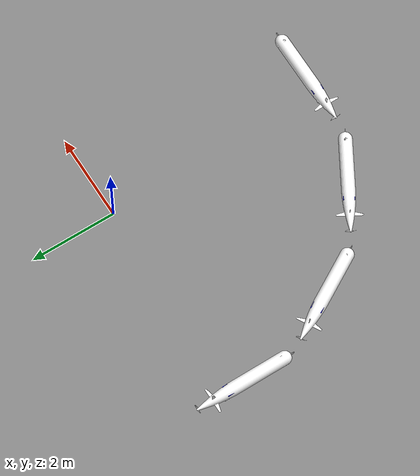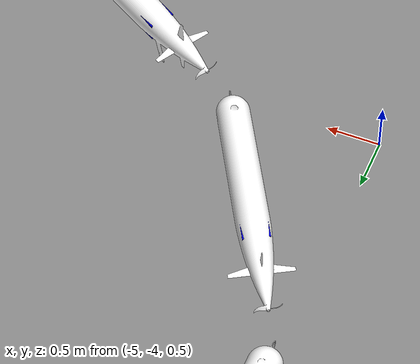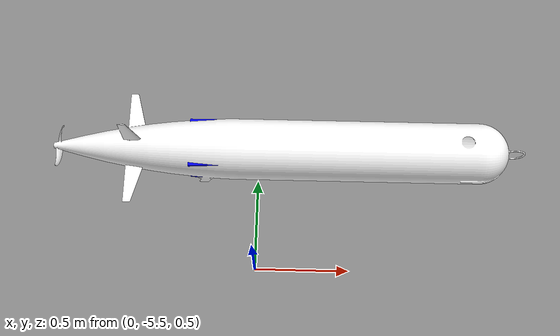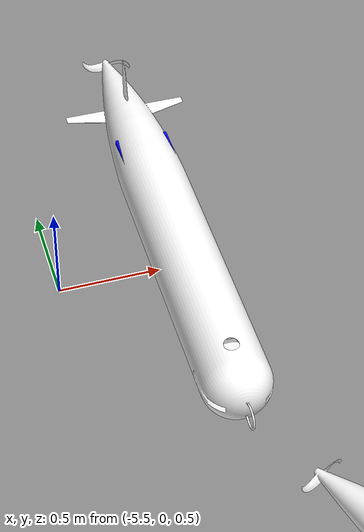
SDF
<?xml version="1.0" ?>
<!--
  Development of this module has been funded by the Monterey Bay Aquarium
  Research Institute (MBARI) and the David and Lucile Packard Foundation
-->
<sdf version="1.9">
  <world name="star_world">
    <scene>
      <!-- For turquoise ambient to match particle effect -->
      <ambient>0.0 1.0 1.0</ambient>
      <!-- For default gray ambient -->
      <background>0.0 0.7 0.8</background>
    </scene>

    <physics name="1ms" type="ode">
      <max_step_size>0.001</max_step_size>
      <real_time_factor>0</real_time_factor>
    </physics>
    <plugin
      filename="gz-sim-physics-system"
      name="gz::sim::systems::Physics">
    </plugin>
    <plugin
      filename="gz-sim-user-commands-system"
      name="gz::sim::systems::UserCommands">
    </plugin>
    <plugin
      filename="gz-sim-scene-broadcaster-system"
      name="gz::sim::systems::SceneBroadcaster">
    </plugin>

    <plugin
      filename="gz-sim-imu-system"
      name="gz::sim::systems::Imu">
    </plugin>
    <plugin
      filename="gz-sim-magnetometer-system"
      name="gz::sim::systems::Magnetometer">
    </plugin>
    <plugin
      filename="gz-sim-buoyancy-system"
      name="gz::sim::systems::Buoyancy">
      <uniform_fluid_density>1025</uniform_fluid_density>
    </plugin>
    <plugin
      filename="gz-sim-acoustic-comms-system"
      name="gz::sim::systems::AcousticComms">
      <max_range>2500</max_range>
      <speed_of_sound>1500</speed_of_sound>
    </plugin>

    <!-- Requires ParticleEmitter2 in gz-sim 4.8.0, which will be copied
      to ParticleEmitter in Ignition G.
      See https://github.com/gazebosim/gz-sim/pull/730 -->
    <plugin
      filename="gz-sim-particle-emitter2-system"
      name="gz::sim::systems::ParticleEmitter2">
    </plugin>

    <!-- Uncomment for time analysis -->

    <light type="directional" name="sun">
      <cast_shadows>true</cast_shadows>
      <pose>0 0 10 0 0 0</pose>
      <diffuse>1 1 1 1</diffuse>
      <specular>0.5 0.5 0.5 1</specular>
      <attenuation>
        <range>1000</range>
        <constant>0.9</constant>
        <linear>0.01</linear>
        <quadratic>0.001</quadratic>
      </attenuation>
      <direction>-0.5 0.1 -0.9</direction>
    </light>

    <include>
      <pose>-5 0 1 0 0 0</pose>
      <uri>tethys_equipped</uri>
      <name>tethys1</name>
      <experimental:params>
        <sensor element_id="base_link::salinity_sensor" action="modify">
          <topic>/model/tethys1/salinity</topic>
        </sensor>
        <sensor element_id="base_link::temperature_sensor" action="modify">
          <topic>/model/tethys1/temperature</topic>
        </sensor>
        <sensor element_id="base_link::chlorophyll_sensor" action="modify">
          <topic>/model/tethys1/chlorophyll</topic>
        </sensor>
        <plugin element_id="gz::sim::systems::Thruster" action="modify">
          <namespace>tethys1</namespace>
        </plugin>
        <plugin element_id="tethys::TethysCommPlugin" action="modify">
          <namespace>tethys1</namespace>
          <command_topic>tethys1/command_topic</command_topic>
          <state_topic>tethys1/state_topic</state_topic>
        </plugin>
        <plugin element_id="gz::sim::systems::BuoyancyEngine" action="modify">
          <namespace>tethys1</namespace>
        </plugin>
        <plugin element_id="gz::sim::systems::DetachableJoint" action="modify">
          <topic>/model/tethys1/drop_weight</topic>
        </plugin>
        <plugin element_id="gz::sim::systems::CommsEndpoint" action="modify">
          <address>1</address>
          <topic>1/rx</topic>
        </plugin>
        <plugin element_id="tethys::RangeBearingPlugin" action="modify">
          <address>1</address>
          <namespace>tethys1</namespace>
        </plugin>
      </experimental:params>
    </include>

    <include>
      <pose>-4.3301 -2.5 1 0 0 0.524</pose>
      <uri>tethys_equipped</uri>
      <name>tethys2</name>
      <experimental:params>
        <sensor element_id="base_link::salinity_sensor" action="modify">
          <topic>/model/tethys2/salinity</topic>
        </sensor>
        <sensor element_id="base_link::temperature_sensor" action="modify">
          <topic>/model/tethys2/temperature</topic>
        </sensor>
        <sensor element_id="base_link::chlorophyll_sensor" action="modify">
          <topic>/model/tethys2/chlorophyll</topic>
        </sensor>
        <sensor element_id="base_link::current_sensor" action="modify">
          <topic>/model/tethys2/current</topic>
        </sensor>
        <plugin element_id="gz::sim::systems::Thruster" action="modify">
          <namespace>tethys2</namespace>
        </plugin>
        <plugin element_id="tethys::TethysCommPlugin" action="modify">
          <namespace>tethys2</namespace>
          <command_topic>tethys2/command_topic</command_topic>
          <state_topic>tethys2/state_topic</state_topic>
        </plugin>
        <plugin element_id="gz::sim::systems::BuoyancyEngine" action="modify">
          <namespace>tethys2</namespace>
        </plugin>
        <plugin element_id="gz::sim::systems::DetachableJoint" action="modify">
          <topic>/model/tethys2/drop_weight</topic>
        </plugin>
        <plugin element_id="gz::sim::systems::CommsEndpoint" action="modify">
          <address>2</address>
          <topic>2/rx</topic>
        </plugin>
        <plugin element_id="tethys::RangeBearingPlugin" action="modify">
          <address>2</address>
          <namespace>tethys2</namespace>
        </plugin>
      </experimental:params>
    </include>

    <include>
      <pose>-2.5 -4.3301 1 0 0 1.0472</pose>
      <uri>tethys_equipped</uri>
      <name>tethys3</name>
      <experimental:params>
        <sensor element_id="base_link::salinity_sensor" action="modify">
          <topic>/model/tethys3/salinity</topic>
        </sensor>
        <sensor element_id="base_link::temperature_sensor" action="modify">
          <topic>/model/tethys3/temperature</topic>
        </sensor>
        <sensor element_id="base_link::chlorophyll_sensor" action="modify">
          <topic>/model/tethys3/chlorophyll</topic>
        </sensor>
        <plugin element_id="gz::sim::systems::Thruster" action="modify">
          <namespace>tethys3</namespace>
        </plugin>
        <plugin element_id="tethys::TethysCommPlugin" action="modify">
          <namespace>tethys3</namespace>
          <command_topic>tethys3/command_topic</command_topic>
          <state_topic>tethys3/state_topic</state_topic>
        </plugin>
        <plugin element_id="gz::sim::systems::BuoyancyEngine" action="modify">
          <namespace>tethys3</namespace>
        </plugin>
        <plugin element_id="gz::sim::systems::DetachableJoint" action="modify">
          <topic>/model/tethys3/drop_weight</topic>
        </plugin>
        <plugin element_id="gz::sim::systems::CommsEndpoint" action="modify">
          <address>3</address>
          <topic>3/rx</topic>
        </plugin>
        <plugin element_id="tethys::RangeBearingPlugin" action="modify">
          <address>3</address>
          <namespace>tethys3</namespace>
        </plugin>
      </experimental:params>
    </include>

    <include>
      <pose>0 -5 1 0 0 1.57</pose>
      <uri>tethys_equipped</uri>
      <name>tethys4</name>
      <experimental:params>
        <sensor element_id="base_link::salinity_sensor" action="modify">
          <topic>/model/tethys4/salinity</topic>
        </sensor>
        <sensor element_id="base_link::temperature_sensor" action="modify">
          <topic>/model/tethys4/temperature</topic>
        </sensor>
        <sensor element_id="base_link::chlorophyll_sensor" action="modify">
          <topic>/model/tethys4/chlorophyll</topic>
        </sensor>
        <plugin element_id="gz::sim::systems::Thruster" action="modify">
          <namespace>tethys4</namespace>
        </plugin>
        <plugin element_id="tethys::TethysCommPlugin" action="modify">
          <namespace>tethys4</namespace>
          <command_topic>tethys4/command_topic</command_topic>
          <state_topic>tethys4/state_topic</state_topic>
        </plugin>
        <plugin element_id="gz::sim::systems::BuoyancyEngine" action="modify">
          <namespace>tethys4</namespace>
        </plugin>
        <plugin element_id="gz::sim::systems::DetachableJoint" action="modify">
          <topic>/model/tethys4/drop_weight</topic>
        </plugin>
        <plugin element_id="gz::sim::systems::CommsEndpoint" action="modify">
          <address>4</address>
          <topic>4/rx</topic>
        </plugin>
        <plugin element_id="tethys::RangeBearingPlugin" action="modify">
          <address>4</address>
          <namespace>tethys4</namespace>
        </plugin>
      </experimental:params>
    </include>
  </world>
</sdf>

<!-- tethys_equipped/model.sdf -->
<!--
  Development of this module has been funded by the Monterey Bay Aquarium
  Research Institute (MBARI) and the David and Lucile Packard Foundation
-->
<sdf version="1.9">
  <model name="tethys">
    <enable_wind>true</enable_wind>

    <include merge="true">
      <!-- align with NED (face North) -->
      <pose degrees="true">0 0 0 0 0 -90</pose>
      <uri>tethys</uri>

      <!-- Sensors -->
      <experimental:params>
        <sensor
          element_id="base_link" action="add"
          name="salinity_sensor"
          type="custom"
          gz:type="environmental_sensor/salinity">
          <always_on>1</always_on>
          <update_rate>30</update_rate>
          <environment_variable>sea_water_salinity_psu</environment_variable>
          <topic>/model/tethys/salinity</topic>
        </sensor>
        <sensor
          element_id="base_link" action="add"
          name="temperature_sensor"
          type="custom"
          gz:type="environmental_sensor/temperature">
          <always_on>1</always_on>
          <update_rate>30</update_rate>
          <environment_variable>sea_water_temperature_degC</environment_variable>
          <topic>/model/tethys/temperature</topic>
        </sensor>
        <sensor
          element_id="base_link" action="add"
          name="chlorophyll_sensor"
          type="custom"
          gz:type="environmental_sensor/chlorophyll">
          <always_on>1</always_on>
          <update_rate>30</update_rate>
          <environment_variable>mass_concentration_of_chlorophyll_in_sea_water_ugram_per_liter</environment_variable>
          <topic>/model/tethys/chlorophyll</topic>
        </sensor>

        <sensor
          element_id="base_link" action="add"
          name="current_sensor"
          type="custom"
          gz:type="environmental_sensor/current">
          <always_on>1</always_on>
          <update_rate>2</update_rate>
          <transform_type>ADD_VELOCITY_LOCAL</transform_type>
          <output_format>vector3</output_format>
          <environment_variable_x>eastward_sea_water_velocity_meter_per_sec</environment_variable_x>
          <environment_variable_y>northward_sea_water_velocity_meter_per_sec</environment_variable_y>
          <topic>/model/tethys/current</topic>
        </sensor>

        <!--
            Teledyne Pathfinder DVL

            See https://www.manualslib.com/manual/1447288/Teledyne-Pathfinder.html
            for further reference.
        -->
        <sensor
            element_id="base_link" action="add"
            name="teledyne_pathfinder_dvl"
            type="custom" gz:type="dvl">
          <!-- Account for DVL mounting position and base link rotation -->
          <pose degrees="true">-0.60 0 -0.16 0 0 180</pose>
          <always_on>1</always_on>
          <update_rate>1</update_rate>
          <topic>/tethys/dvl/velocity</topic>
          <gz:dvl>
            <type>phased_array</type>
            <arrangement degrees="true">
              <beam id="1">
                <aperture>2.1</aperture>
                <rotation>45</rotation>
                <tilt>30</tilt>
              </beam>
              <beam>
                <aperture>2.1</aperture>
                <rotation>135</rotation>
                <tilt>30</tilt>
              </beam>
              <beam>
                <aperture>2.1</aperture>
                <rotation>-45</rotation>
                <tilt>30</tilt>
              </beam>
              <beam>
                <aperture>2.1</aperture>
                <rotation>-135</rotation>
                <tilt>30</tilt>
              </beam>
            </arrangement>
            <tracking>
              <bottom_mode>
                <when>best</when>
                <noise type="gaussian">
                  <!-- +/- 0.4 cm/s precision at 10 m/s within 2 stddevs -->
                  <stddev>0.002</stddev>
                </noise>
                <visualize>false</visualize>
              </bottom_mode>
              <water_mass_mode>
                <when>best</when>
                <water_velocity>
                  <x>eastward_sea_water_velocity_meter_per_sec</x>
                  <y>northward_sea_water_velocity_meter_per_sec</y>
                </water_velocity>
                <boundaries>
                  <near>20.</near>
                  <far>60.</far>
                </boundaries>
                <bins>10</bins>
                <noise type="gaussian">
                  <!-- +/- 0.7 cm/s precision at 10 m/s within 2 stddevs -->
                  <stddev>0.0035</stddev>
                </noise>
                <visualize>false</visualize>
              </water_mass_mode>
            </tracking>
            <!-- Roughly 1 m resolution at a 100m -->
            <resolution>0.01</resolution>
            <!-- Approximate maximum range @ ~14.4v -->
            <maximum_range>80.</maximum_range>
            <minimum_range>0.1</minimum_range>
            <!-- ENU to SFM -->
            <reference_frame>0 0 0 0 0 -1.570796</reference_frame>
          </gz:dvl>
        </sensor>
        <!--
            Sparton AHRS-M2 arrangement of IMU + Magnetometer

            See https://www.spartonnavex.com/product/ahrs-m2 for
            AHRS specifications and additional documentation.
        -->
        <sensor
            element_id="base_link"
            action="add"
            name="sparton_ahrs_m2_imu"
            type="imu">
          <!--IMU in a Sparton AHRS-M2 -->
          <always_on>1</always_on>
          <!-- Flip body frame to match FSK frame convention -->
          <!--
            Also account for model being rotated 180 degrees
            See https://github.com/osrf/lrauv/issues/80.
          -->
          <pose degrees="true">0 0 0 180 0 180</pose>
          <imu>
            <orientation_reference_frame>
              <localization>NED</localization>
            </orientation_reference_frame>
            <enable_orientation>1</enable_orientation>
            <linear_acceleration>
              <x>
                <noise type="gaussian">
                  <stddev>0.00775283755402256</stddev>
                  <bias_stddev>0.007297128265</bias_stddev>
                </noise>
              </x>
              <y>
                <noise type="gaussian">
                  <stddev>0.00775283755402256</stddev>
                  <bias_stddev>0.007297128265</bias_stddev>
                </noise>
              </y>
              <z>
                <noise type="gaussian">
                  <stddev>0.00775283755402256</stddev>
                  <bias_stddev>0.007297128265</bias_stddev>
                </noise>
              </z>
            </linear_acceleration>
            <angular_velocity>
              <x>
                <noise type="gaussian">
                  <stddev>0.0022076862812880228</stddev>
                  <bias_stddev>0.0017819444444444445</bias_stddev>
                </noise>
              </x>
              <y>
                <noise type="gaussian">
                  <stddev>0.0022076862812880228</stddev>
                  <bias_stddev>0.0017819444444444445</bias_stddev>
                </noise>
              </y>
              <z>
                <noise type="gaussian">
                  <stddev>0.0022076862812880228</stddev>
                  <bias_stddev>0.0017819444444444445</bias_stddev>
                </noise>
              </z>
            </angular_velocity>
          </imu>
          <update_rate>10</update_rate>
          <topic>/tethys/ahrs/imu</topic>
        </sensor>
        <!--Magnetometer in a Sparton AHRS-M2 -->
        <sensor
            element_id="base_link"
            action="add"
            name="sparton_ahrs_m2_magnetometer"
            type="magnetometer">
          <always_on>1</always_on>
          <update_rate>10</update_rate>
          <!-- Flip body frame to match FSK frame convention -->
          <!--
            Also account for model being rotated 180 degrees
            See https://github.com/osrf/lrauv/issues/80.
          -->
          <pose degrees="true">0 0 0 180 0 180</pose>
          <topic>/tethys/ahrs/magnetometer</topic>
        </sensor>
      </experimental:params>
      <!-- Joint controllers -->
      <plugin
        filename="gz-sim-joint-position-controller-system"
        name="gz::sim::systems::JointPositionController">
        <joint_name>horizontal_fins_joint</joint_name>
        <p_gain>0.1</p_gain>
      </plugin>
      <plugin
        filename="gz-sim-joint-position-controller-system"
        name="gz::sim::systems::JointPositionController">
        <joint_name>vertical_fins_joint</joint_name>
        <p_gain>0.1</p_gain>
      </plugin>
      <plugin
        filename="gz-sim-thruster-system"
        name="gz::sim::systems::Thruster">
        <namespace>tethys</namespace>
        <joint_name>propeller_joint</joint_name>
        <!-- Be sure to update TethysComm when updating these numbers -->
        <thrust_coefficient>0.004312328425753156</thrust_coefficient>
        <fluid_density>1025</fluid_density>
        <propeller_diameter>0.2</propeller_diameter>
        <velocity_control>true</velocity_control>
        <use_angvel_cmd>true</use_angvel_cmd>
      </plugin>
      <plugin
        filename="gz-sim-joint-position-controller-system"
        name="gz::sim::systems::JointPositionController">
        <joint_name>battery_joint</joint_name>
        <use_velocity_commands>true</use_velocity_commands>
        <cmd_max>0.0007</cmd_max>
      </plugin>
      <!-- Lift and drag -->
      <!-- Vertical fin -->
      <plugin
        filename="gz-sim-lift-drag-system"
        name="gz::sim::systems::LiftDrag">
        <air_density>1025</air_density>
        <cla>4.13</cla>
        <cla_stall>-1.1</cla_stall>
        <cda>0.2</cda>
        <cda_stall>0.03</cda_stall>
        <alpha_stall>0.17</alpha_stall>
        <a0>0</a0>
        <area>0.0244</area>
        <!-- Link's Y is perpendicular to the control surface -->
        <upward>0 1 0</upward>
        <!-- Link's X is pointing towards the back -->
        <forward>-1 0 0</forward>
        <link_name>vertical_fins</link_name>
        <cp>0 0 0</cp>
      </plugin>
      <!-- Horizontal fin -->
      <plugin
        filename="gz-sim-lift-drag-system"
        name="gz::sim::systems::LiftDrag">
        <air_density>1025</air_density>
        <cla>4.13</cla>
        <cla_stall>-1.1</cla_stall>
        <cda>0.2</cda>
        <cda_stall>0.03</cda_stall>
        <alpha_stall>0.17</alpha_stall>
        <a0>0</a0>
        <area>0.0244</area>
        <!-- Link's Z is perpendicular to the control surface -->
        <upward>0 0 1</upward>
        <!-- Link's X is pointing towards the back -->
        <forward>-1 0 0</forward>
        <link_name>horizontal_fins</link_name>
        <cp>0 0 0</cp>
      </plugin>
      <!-- Interface with LRAUV Main Vehicle Application for each vehicle -->
      <plugin
        filename="TethysCommPlugin"
        name="tethys::TethysCommPlugin">
        <namespace>tethys</namespace>
        <command_topic>tethys/command_topic</command_topic>
        <state_topic>tethys/state_topic</state_topic>
        <debug_printout>0</debug_printout>
        <ocean_density>1025</ocean_density>
      </plugin>
      <plugin
        filename="HydrodynamicsPlugin"
        name="tethys::HydrodynamicsPlugin">
        <link_name>base_link</link_name>
        <enable_coriolis>false</enable_coriolis>
        <xDotU>-4.876161</xDotU>
        <yDotV>-126.324739</yDotV>
        <zDotW>-126.324739</zDotW>
        <kDotP>0</kDotP>
        <mDotQ>-33.46</mDotQ>
        <nDotR>-33.46</nDotR>
        <xUU>-6.2282</xUU>
        <xU>0</xU>
        <yVV>-601.27</yVV>
        <yV>0</yV>
        <zWW>-601.27</zWW>
        <zW>0</zW>
        <kPP>-0.1916</kPP>
        <kP>0</kP>
        <mQQ>-632.698957</mQQ>
        <mQ>0</mQ>
        <nRR>-632.698957</nRR>
        <nR>0</nR>
      </plugin>
      <plugin
        filename="gz-sim-buoyancy-engine-system"
        name="gz::sim::systems::BuoyancyEngine">
        <link_name>buoyancy_engine</link_name>
        <namespace>tethys</namespace>
        <fluid_density>1025</fluid_density>
        <!-- 80 cc == 0.00008 m^3 -->
        <min_volume>0.000080</min_volume>
        <!-- 500 cc == 0.0005 m^3 -->
        <neutral_volume>0.0005</neutral_volume>
        <default_volume>0.0005</default_volume>
        <!-- 955 cc == 0.000955 m^3 -->
        <max_volume>0.000955</max_volume>
        <max_inflation_rate>0.000003</max_inflation_rate>
      </plugin>
      <plugin
        filename="gz-sim-detachable-joint-system"
        name="gz::sim::systems::DetachableJoint">
        <parent_link>base_link</parent_link>
        <child_model>__model__</child_model>
        <child_link>drop_weight</child_link>
        <topic>/model/tethys/drop_weight</topic>
      </plugin>

      <plugin
        filename="gz-sim-comms-endpoint-system"
        name="gz::sim::systems::CommsEndpoint">
        <address>1</address>
        <topic>1/rx</topic>
      </plugin>

      <plugin
        filename="RangeBearingPlugin"
        name="tethys::RangeBearingPlugin">
        <address>1</address>
        <processing_delay>0.3</processing_delay>
        <speed_of_sound>1500</speed_of_sound>
        <link_name>acoustic_transponder</link_name>
        <namespace>tethys</namespace>
      </plugin>

      <!-- The consists of 62 batteries of NH2034HD34 Lithium Ion batteries. -->
      <!-- Datasheet: https://github.com/osrf/lrauv/files/8614587/NH2034HD34_spec_v1.5.pdf -->
      <!-- Reference comment : https://github.com/osrf/lrauv/issues/201#issuecomment-1116729239 -->
      <plugin filename="gz-sim-linearbatteryplugin-system"
        name="gz::sim::systems::LinearBatteryPlugin">
        <battery_name>linear_battery</battery_name>
        <voltage>14.4</voltage>
        <open_circuit_voltage_constant_coef>14.4</open_circuit_voltage_constant_coef>
        <fix_issue_225>true</fix_issue_225>
        <!-- Initial charge in Ah -->
        <initial_charge>400</initial_charge>
        <capacity>400</capacity>
        <!-- 190mOhm / 62 -->
        <resistance>0.003064</resistance>
        <!-- Power consumption in Watts: 14.4V * 2 A -->
        <power_load>28.8</power_load>
        <!-- Recharging the battery -->
        <!-- Avg discharge current = (max + min) / 2 -->
        <!-- Charging time: 400 Ah/( 9.5 A ) = 42.1 h -->
        <enable_recharge>true</enable_recharge>
        <recharge_by_topic>true</recharge_by_topic>
        <charging_time>42.1</charging_time>
      </plugin>

    </include>
  </model>
</sdf>

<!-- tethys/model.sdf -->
<!--
  Development of this module has been funded by the Monterey Bay Aquarium
  Research Institute (MBARI) and the David and Lucile Packard Foundation
-->
<sdf version="1.6">
  <model name="tethys">
    <!-- Body -->
    <link name="base_link">
      <inertial>
        <!-- to offset battery CoM before getting real parameters for vehicle without battery -->
        <!-- 146.5671 subtracted by battery mass -->
        <mass>114.8364</mass>
        <!-- TODO: Get inertial matrix of base link WITHOUT battery -->
        <inertia>

          <!-- Guesstimated (decreased by 1/5) to account for battery -->
          <ixx>2.4</ixx>
          <ixy>0</ixy>
          <ixz>0.0004</ixz>
          <iyy>33.5841864</iyy>
          <iyz>0</iyz>
          <izz>33.5841864</izz>

        </inertia>
      </inertial>

      <collision name="main_body_buoyancy">
        <pose>0 0 0.007 0 0 0</pose>
        <geometry>
          <box>
            <size>2 0.3 0.245945166667</size>
          </box>
        </geometry>
      </collision>

      <visual name="visual">
        <geometry>
          <mesh>
            <uri>meshes/tethys.dae</uri>
            <submesh>
              <name>Body</name>
              <center>false</center>
            </submesh>
          </mesh>
        </geometry>
        <material>
          <diffuse>1.0 1.0 1.0 1.0</diffuse>
          <specular>1.0 1.0 1.0 1.0</specular>
          <pbr>
            <metal>
              <albedo_map>materials/textures/Tethys_Albedo.png</albedo_map>
              <normal_map>materials/textures/Tethys_Normal.png</normal_map>
              <metalness_map>materials/textures/Tethys_Metalness.png</metalness_map>
              <roughness_map>materials/textures/Tethys_Roughness.png</roughness_map>
            </metal>
          </pbr>
          <script>
            <uri>materials/scripts/</uri>
            <uri>materials/textures/</uri>
            <name>tethys/Tethys_Diffuse</name>
          </script>
        </material>
      </visual>
    </link>

    <!-- Horizontal fins -->
    <link name="horizontal_fins">
      <pose>1.05 0 0 0 0 0</pose>
      <inertial>
        <pose>0 0 0 1.57 0 0.5</pose>
        <mass>0.2</mass>
        <inertia>
          <ixx>0.0007924568755</ixx>
          <ixy>-0.0000000002674</ixy>
          <ixz>0.0003978158176</ixz>
          <iyy>0.0010546736475</iyy>
          <iyz>-0.0000000006729</iyz>
          <izz>0.0002633558262</izz>
        </inertia>
      </inertial>

      <collision name="collision">
        <geometry>
          <box>
            <size>0.1 0.1 0.02</size>
          </box>
        </geometry>
      </collision>

      <visual name= "visual">
        <pose>-1.05 0 0 0 0 0</pose>
        <geometry>
          <mesh>
            <uri>meshes/tethys.dae</uri>
            <submesh>
              <name>Fins_Horizontal</name>
              <center>false</center>
            </submesh>
          </mesh>
        </geometry>
        <material>
          <diffuse>1.0 1.0 1.0</diffuse>
          <specular>1.0 1.0 1.0</specular>
          <pbr>
            <metal>
              <albedo_map>materials/textures/Tethys_Albedo.png</albedo_map>
              <normal_map>materials/textures/Tethys_Normal.png</normal_map>
              <metalness_map>materials/textures/Tethys_Metalness.png</metalness_map>
              <roughness_map>materials/textures/Tethys_Roughness.png</roughness_map>
            </metal>
          </pbr>
          <script>
            <uri>materials/scripts/</uri>
            <uri>materials/textures/</uri>
            <name>tethys/Tethys_Diffuse</name>
          </script>
        </material>
      </visual>
    </link>

    <!-- Vertical fins -->
    <link name="vertical_fins">
      <pose>1.05 0 0 0 0 0</pose>
      <inertial>
        <mass>0.2</mass>
        <inertia>
          <ixx>0.0007924568755</ixx>
          <ixy>-0.0000000002674</ixy>
          <ixz>0.0003978158176</ixz>
          <iyy>0.0010546736475</iyy>
          <iyz>-0.0000000006729</iyz>
          <izz>0.0002633558262</izz>
        </inertia>
      </inertial>

      <collision name="collision">
         <geometry>
          <box>
            <size>0.1 0.1 0.02</size>
          </box>
        </geometry>
      </collision>

      <visual name= "visual">
        <pose>-1.05 0 0 0 0 0</pose>
        <geometry>
          <mesh>
            <uri>meshes/tethys.dae</uri>
            <submesh>
              <name>Fins_vertical</name>
              <center>false</center>
            </submesh>
          </mesh>
        </geometry>
        <material>
          <diffuse>1.0 1.0 1.0</diffuse>
          <specular>1.0 1.0 1.0</specular>
          <pbr>
            <metal>
              <albedo_map>materials/textures/Tethys_Albedo.png</albedo_map>
              <normal_map>materials/textures/Tethys_Normal.png</normal_map>
              <metalness_map>materials/textures/Tethys_Metalness.png</metalness_map>
              <roughness_map>materials/textures/Tethys_Roughness.png</roughness_map>
            </metal>
          </pbr>
          <script>
            <uri>materials/scripts/</uri>
            <uri>materials/textures/</uri>
            <name>tethys/Tethys_Diffuse</name>
          </script>
        </material>
      </visual>
    </link>

    <!-- Propeller -->
    <link name="propeller">
      <pose>1.43162 0 0 0 0 0</pose>
      <inertial>
        <pose>0 0 0 1.570796 0 0</pose>
        <mass>0.09</mass>
        <inertia>
          <ixx>0.000143971303</ixx>
          <ixy>0.000000000008</ixy>
          <ixz>-0.000000000224</ixz>
          <iyy>0.000140915448</iyy>
          <iyz>-0.000025236433</iyz>
          <izz>0.000033571862</izz>
        </inertia>
      </inertial>

      <collision name="collision">
        <geometry>
          <box>
            <size>0.03 0.1 0.03</size>
          </box>
        </geometry>
      </collision>

      <visual name= "visual">
        <pose>-1.43162 0 0 0 0 0</pose>
        <geometry>
          <mesh>
            <uri>meshes/tethys.dae</uri>
            <submesh>
              <name>Prop</name>
              <center>false</center>
            </submesh>
          </mesh>
        </geometry>
        <material>
          <diffuse>1.0 1.0 1.0</diffuse>
          <specular>1.0 1.0 1.0</specular>
          <pbr>
            <metal>
              <albedo_map>materials/textures/Tethys_Albedo.png</albedo_map>
              <normal_map>materials/textures/Tethys_Normal.png</normal_map>
              <metalness_map>materials/textures/Tethys_Metalness.png</metalness_map>
              <roughness_map>materials/textures/Tethys_Roughness.png</roughness_map>
            </metal>
          </pbr>
          <script>
            <uri>materials/scripts/</uri>
            <uri>materials/textures/</uri>
            <name>tethys/Tethys_Diffuse</name>
          </script>
        </material>
      </visual>
    </link>

    <!-- Battery -->
    <!-- No separate collision for battery, because it is inside the vehicle.
         Additional collision requires buoyancy volume recalculation. -->
    <link name="battery">
      <!-- TODO: On hold till mesh center adjusted to aft dome, then it will be 0.563, 0, 0.024. -->
      <pose>0 0 0 0 0 0</pose>
      <inertial>
        <!-- Non-zero y creates roll. Not fun to tune without actual base link inertia minus battery-->
        <mass>31.7307</mass>
        <inertia>
          <ixx>0.2327</ixx>
          <ixy>0</ixy>
          <ixz>-0.0004</ixz>
          <iyy>1.0930</iyy>
          <iyz>0</iyz>
          <izz>1.0344</izz>
        </inertia>
      </inertial>

      <visual name= "visual">
        <geometry>
          <box>
            <!-- z is guesstimated from schematics. Visual doesn't matter. -->
            <size>0.6489446 0.24638 0.17415</size>
          </box>
        </geometry>
        <material>
          <diffuse>0.0 0.0 1.0 1.0</diffuse>
          <specular>0.0 0.0 1.0 1.0</specular>
        </material>
      </visual>
    </link>

    <link name="buoyancy_engine">
      <!-- TODO: Determine location of buoyancy engine -->
      <pose>0.4 0 0 0 0 0</pose>

      <inertial>
        <pose>0 0 0 0 0 0</pose>
        <mass>0.3</mass>
        <inertia>
          <ixx>0.000143971303</ixx>
          <ixy>0.000000000008</ixy>
          <ixz>-0.000000000224</ixz>
          <iyy>0.000140915448</iyy>
          <iyz>-0.000025236433</iyz>
          <izz>0.000033571862</izz>
        </inertia>
      </inertial>
      <collision name="collision">
        <geometry>
          <box>
            <size>0.03 0.1 0.1</size>
          </box>
        </geometry>
      </collision>
    </link>

    <!-- Joints -->
    <joint name="buoyancy_engine_joint" type="fixed">
      <pose>0 0 0 0 0 0</pose>
      <parent>base_link</parent>
      <child>buoyancy_engine</child>
      <namespace>tethys</namespace>
    </joint>
    <joint name="horizontal_fins_joint" type="revolute">
      <pose>0 0 0 0 0 0</pose>
      <parent>base_link</parent>
      <child>horizontal_fins</child>
      <axis>
        <xyz>0 1 0</xyz>
        <limit>
          <lower>-0.261799</lower>
          <upper>0.261799</upper>
          <effort>-1</effort>
          <velocity>-1</velocity>
        </limit>
      </axis>
    </joint>

    <joint name="vertical_fins_joint" type="revolute">
      <pose degrees="true">0 0 0   180 0 0</pose>
      <parent>base_link</parent>
      <child>vertical_fins</child>
      <axis>
        <xyz>0 0 1</xyz>
        <limit>
          <lower>-0.261799</lower>
          <upper>0.261799</upper>
          <effort>-1</effort>
          <velocity>-1</velocity>
        </limit>
      </axis>
    </joint>

    <joint name="propeller_joint" type="revolute">
      <pose degrees="true">0 0 0   0 180 0</pose>
      <parent>base_link</parent>
      <child>propeller</child>
      <axis>
        <xyz>1 0 0</xyz>
        <limit>
          <lower>-1e+12</lower>
          <upper>1e+12</upper>
          <effort>1e6</effort>
          <velocity>-1</velocity>
        </limit>
      </axis>
    </joint>

    <!-- positive joint values move mass forward -->
    <joint name="battery_joint" type="prismatic">
      <pose degrees="true">0 0 0   0 0 180</pose>
      <parent>base_link</parent>
      <child>battery</child>
      <axis>
        <xyz>1 0 0</xyz>
        <limit>
          <lower>-0.03</lower>
          <upper>0.03</upper>
          <effort>1e6</effort>
          <velocity>0.0007</velocity>
        </limit>
      </axis>
    </joint>

    <!-- Drop weight -->
    <link name="drop_weight">
      <pose>0 0 0 0 0 0</pose>
      <inertial>
        <pose>0 0 0 0 0 0</pose>
        <mass>1</mass>
        <inertia>
          <ixx>0.000143971303</ixx>
          <ixy>0.000000000008</ixy>
          <ixz>-0.000000000224</ixz>
          <iyy>0.000140915448</iyy>
          <iyz>-0.000025236433</iyz>
          <izz>0.000033571862</izz>
        </inertia>
      </inertial>
    </link>

  </model>
</sdf>
